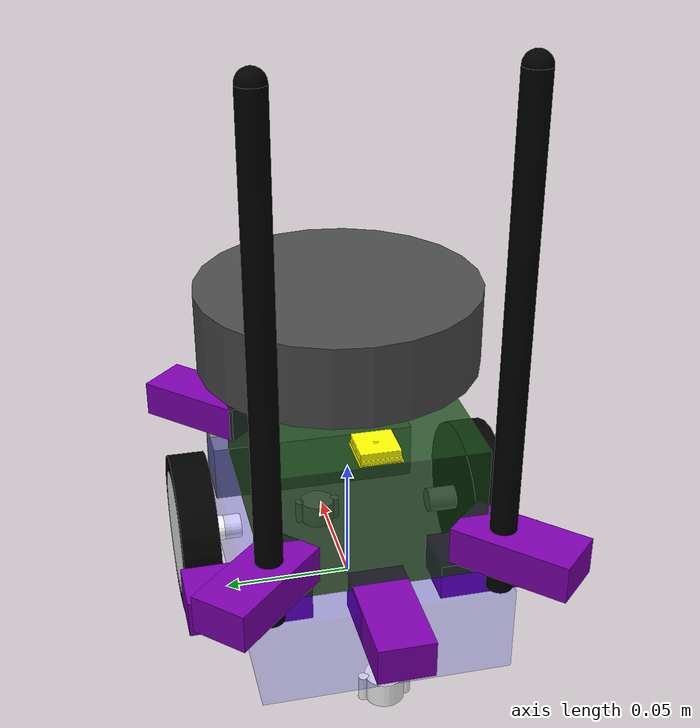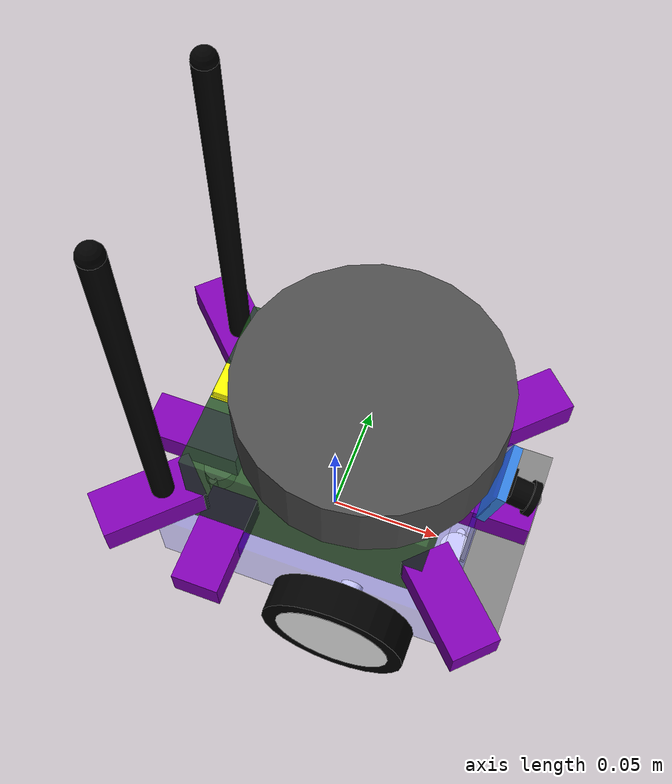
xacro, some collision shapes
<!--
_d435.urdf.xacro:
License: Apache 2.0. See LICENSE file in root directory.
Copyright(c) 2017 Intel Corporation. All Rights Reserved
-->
<?xml version="1.0"?>
<robot xmlns:xacro="http://www.ros.org/wiki/xacro" name="jetbot">

  <!-- Xacro arguments for depth camera use -->
  <xacro:arg name="realsense_enable" default="true" />
  <xacro:arg name="pointcloud_enable" default="true" />

  <!-- Xacro arguments for depth lidar use -->
  <xacro:arg name="lidar_enable" default="true" />
  <xacro:arg name="visualize_laser" default="true" />

  <!-- Xacro arguments for imu -->
  <xacro:arg name="imu_enable" default="true" />

  <!-- Xacro arguments for gps -->
  <xacro:arg name="gps_enable" default="true" />

  <!-- Xacro arguments for ultrasonic -->
  <xacro:arg name="ultrasonic_enable" default="true" />

  <!-- All Neccesary Header Files, Macros and Constants -->
  <xacro:include filename="$(find jetbot_diff_drive)/urdf/includes.xacro" />
  <!-- All Neccesary Header FIles, Macros and Constants -->

  <!-- CHASSIS -->
  <xacro:chassis />
  <!-- LEFT WHEEL -->
  <xacro:wheel_parts prefix="lt" reflect="1" />
  <!-- RIGHT WHEEL -->
  <xacro:wheel_parts prefix="rt" reflect="-1" />
  <!-- FRONT CASTER WHEEL -->
  <xacro:caster_wheel_parts prefix="front" reflect="1" />
  <!-- BACK CASTER WHEEL -->
  <xacro:caster_wheel_parts prefix="back" reflect="-1" />
  <!-- LEFT ANTENNA -->
  <xacro:antenna prefix="lt" reflect="1" />
  <!-- RIGHT ANTENNA -->
  <xacro:antenna prefix="rt" reflect="-1" />
  <!-- SENSORS -->
  <!-- MONOCULAR CAMERA -->
  <xacro:camera />
  <!-- BOARDS -->
  <xacro:pcb />

  <!-- REALSENSE CAMERA -->
  <xacro:if value="$(arg realsense_enable)">
    <xacro:sensor_d435 name="realsense_d435" topics_ns="realsense_d435" parent="base_link" publish_pointcloud="$(arg pointcloud_enable)" >
      <origin xyz="0.077 0 0" rpy="0 0 0" />
    </xacro:sensor_d435>
  </xacro:if>

  <!-- RPLIDAR LASER -->
  <xacro:if value="$(arg lidar_enable)" >
    <xacro:sensor_rplidar name="rplidar" topic_ns="rplidar" parent="pcb_boards" visualize_laser="$(arg visualize_laser)" >
      <origin xyz="0 0 0.058" rpy="0 0 0" />
    </xacro:sensor_rplidar >
  </xacro:if>

  <!-- IMU -->
  <xacro:if value="$(arg imu_enable)" >
    <xacro:sensor_imu name="bno055" topic_ns="bno_imu" parent="pcb_boards" >
      <origin xyz="0 0 0.0275" rpy="0 0 0" />
    </xacro:sensor_imu>
  </xacro:if>

  <!-- GPS -->
  <xacro:if value="$(arg gps_enable)" >
    <xacro:sensor_gps name="mtk3339" topic_ns="mtk_gps" parent="bno055_base" >
      <origin xyz="-0.044 0 0" rpy="0 0 0" />
    </xacro:sensor_gps>
  </xacro:if>

  <!-- Ultrasonic Sensors -->
  <xacro:if value="$(arg ultrasonic_enable)" >
    <xacro:sensor_sonar name="sonar_1" topic_ns="sonar_back_rt" prefix="back_rt" parent="base_link" >
      <origin xyz="-${base_len/3.5} -${base_width/2} ${base_height/2}" rpy="0 0 -${pi/2}" />
    </xacro:sensor_sonar>

    <xacro:sensor_sonar name="sonar_2" topic_ns="sonar_front_rt45" prefix="front_rt45" parent="base_link" >
      <origin xyz="${base_len/2} -${base_width/2} ${base_height+(base_z_offset)/2}" rpy="0 0 -${pi/4}" />
    </xacro:sensor_sonar>

    <xacro:sensor_sonar name="sonar_3" topic_ns="sonar_front" prefix="front" parent="camera_mount_over" >
      <origin xyz="0 0 0" rpy="0 0 0" />
    </xacro:sensor_sonar>

    <xacro:sensor_sonar name="sonar_4" topic_ns="sonar_front_lt45" prefix="front_lt45" parent="base_link" >
      <origin xyz="${base_len/2} ${base_width/2} ${base_height+(base_z_offset)/2}" rpy="0 0 ${pi/4}" />
    </xacro:sensor_sonar>

    <xacro:sensor_sonar name="sonar_5" topic_ns="sonar_back_lt" prefix="back_lt" parent="base_link" >
      <origin xyz="-${base_len/3.5} ${base_width/2} ${base_height/2}" rpy="0 0 ${pi/2}" />
    </xacro:sensor_sonar>

    <xacro:sensor_sonar name="sonar_6" topic_ns="sonar_back_lt45" prefix="back_lt45" parent="base_link" >
      <origin xyz="-${base_len/2} ${base_width/2} ${base_height+(base_z_offset)/2}" rpy="0 0 ${pi/2 + pi/4}" />
    </xacro:sensor_sonar>

    <xacro:sensor_sonar name="sonar_7" topic_ns="sonar_back" prefix="back" parent="base_link" >
      <origin xyz="-${base_len/2} 0 ${base_height/2}" rpy="0 0 ${pi}" />
    </xacro:sensor_sonar>

    <xacro:sensor_sonar name="sonar_8" topic_ns="sonar_back_rt45" prefix="back_rt45" parent="base_link" >
      <origin xyz="-${base_len/2} -${base_width/2} ${base_height+(base_z_offset)/2}" rpy="0 0 -${pi/2 + pi/4}" />
    </xacro:sensor_sonar>
  </xacro:if>

</robot>

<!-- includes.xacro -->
<robot xmlns:xacro="http://www.ros.org/wiki/xacro">

  <!-- Rviz Color Properties -->
  <xacro:include filename="$(find jetbot_diff_drive)/urdf/includes/materials/materials.xacro" />
  <!-- Rviz Color Properties -->

  <!-- Gazebo Properties -->
  <xacro:include filename="$(find jetbot_diff_drive)/urdf/includes/gazebo/jetbot.gazebo.xacro" />
  <!-- Gazebo Properties -->

  <!-- Transmission Macro -->
  <xacro:include filename="$(find jetbot_diff_drive)/urdf/includes/gazebo/transmission.xacro" />
  <!-- Transmission Macro -->

  <!-- Inertia Macros -->
  <xacro:include filename="$(find jetbot_diff_drive)/urdf/includes/gazebo/inertias.xacro" />
  <!-- Inertia Macros -->

  <!-- Chassis macro -->
  <xacro:include filename="$(find jetbot_diff_drive)/urdf/includes/parts/chassis.xacro" />
  <!-- Chassis macro -->

  <!-- Antenna Macro -->
  <xacro:include filename="$(find jetbot_diff_drive)/urdf/includes/parts/antenna.xacro" />
  <!-- Antenna Macro -->

  <!-- Wheel Macro -->
  <xacro:include filename="$(find jetbot_diff_drive)/urdf/includes/parts/wheels/wheel.xacro" />
  <!-- Wheel Macro -->

  <!-- Caster Wheel Macro -->
  <xacro:include filename="$(find jetbot_diff_drive)/urdf/includes/parts/wheels/caster.xacro" />
  <!-- Caster Wheel Macro -->

  <!-- Camera-->
  <xacro:include filename="$(find jetbot_diff_drive)/urdf/includes/parts/sensors/rgbcam/camera.xacro" />
  <!-- Camera-->

  <!-- PCB Boards -->
  <xacro:include filename="$(find jetbot_diff_drive)/urdf/includes/parts/boards.xacro" />
  <!-- PCB Boards -->

  <!-- Intel Realsense Macro -->
  <xacro:include filename="$(find jetbot_diff_drive)/urdf/includes/parts/sensors/realsense/_d435.urdf.xacro" />
  <!-- Intel Realsense Macro -->

  <!-- RPLidar -->
  <xacro:include filename="$(find jetbot_diff_drive)/urdf/includes/parts/sensors/laser/laser.urdf.xacro" />
  <!-- RPLidar -->

  <!-- IMU -->
  <xacro:include filename="$(find jetbot_diff_drive)/urdf/includes/parts/sensors/imu/bno055.urdf.xacro" />
  <!-- IMU -->

  <!-- GPS -->
  <xacro:include filename="$(find jetbot_diff_drive)/urdf/includes/parts/sensors/gps/mtk3339.urdf.xacro" />
  <!-- GPS -->

  <!-- Sonar -->
  <xacro:include filename="$(find jetbot_diff_drive)/urdf/includes/parts/sensors/sonar/hcsr04.urdf.xacro" />
  <!-- SOnar -->

</robot>

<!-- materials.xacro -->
<robot>

  <material name="purple">
    <color rgba="0.5 0 0.7 1"/>
  </material>
  <material name="yellow">
    <color rgba="1 1 0 1"/>
  </material>
  <material name="black">
    <color rgba="0 0 0 1"/>
  </material>
  <material name="white">
    <color rgba="1.0 1.0 1.0 1.0"/>
  </material>
  <material name="blue">
    <color rgba="0 0 1 0.2"/>
  </material>
  <material name="grey">
    <color rgba="0.66 0.66 0.66 1"/>
  </material>
  <material name="soft_blue">
    <color rgba="0.2157 0.5294 0.9216 1"/>
  </material>
  <material name="grey_alpha">
    <color rgba="0.3 0.3 0.3 0.4"/>
  </material>
  <material name="green">
    <color rgba="0.1 0.3 0.1 0.8"/>
  </material>
  <material name="dark">
    <color rgba="0.3 0.3 0.3 1.0"/>
  </material>

</robot>

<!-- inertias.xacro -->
<robot xmlns:xacro="http://www.ros.org/wiki/xacro">

  <!-- Inertia Equations -->
  <!-- https://bit.ly/2S0aK32 -->
  <!-- ixx ixy ixz -->
  <!-- ixy iyy iyz -->
  <!-- ixz iyz izz -->

  <!-- A simple inertial macro -->
  <xacro:macro name="inertia" params="mass">
    <inertial>
      <mass value="${mass}"/>
      <inertia ixx="0.04" ixy="0.0" ixz="0.0" iyy="0.04" iyz="0.0" izz="0.04"/>
    </inertial>
  </xacro:macro>
  <!-- A simple inertial macro -->

  <!-- cuboid inertia -->
  <xacro:macro name="cuboid_inertia" params="mass x y z">
    <inertial>
      <mass value="${mass}"/>
      <inertia  ixx="${mass*(y*y+z*z)/12}" ixy = "0" ixz = "0"
                iyy="${mass*(x*x+z*z)/12}" iyz = "0"
                izz="${mass*(x*x+y*y)/12}" />
    </inertial>
  </xacro:macro>
  <!-- cuboid inertia -->

  <!-- sphere inertia -->
  <xacro:macro name="sphere_inertia" params="mass r">
    <inertial>
      <mass value="${mass}"/>
      <inertia  ixx="${2*mass*r*r/5}" ixy = "0" ixz = "0"
                iyy="${2*mass*r*r/5}" iyz = "0"
                izz="${2*mass*r*r/5}" />
    </inertial>
  </xacro:macro>
  <!-- sphere inertia -->

  <!-- cylinder inertia -->
  <xacro:macro name="cylinder_inertia" params="mass r h">
    <inertial>
      <mass value="${mass}"/>
      <inertia  ixx="${mass*(3*r*r+h*h)/12}" ixy = "0" ixz = "0"
                iyy="${mass*(3*r*r+h*h)/12}" iyz = "0"
                izz="${mass*r*r/2}" />
    </inertial>
  </xacro:macro>
  <!-- cylinder inertia -->

</robot>

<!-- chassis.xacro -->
<robot xmlns:xacro="http://www.ros.org/wiki/xacro">

  <!-- Chassis constants -->
  <xacro:property name="base_len" value="0.134"/>
  <xacro:property name="base_width" value="0.095"/>
  <xacro:property name="base_height" value="0.035"/>
  <xacro:property name="base_z_offset" value="0.013"/>
  <xacro:property name="base_mass" value="0.045" />
  <!--xacro:property name="base_mass" value="0.6" /-->
  <!-- Chassis constants -->

  <!-- CHASSIS (body) -->
  <xacro:macro name="chassis" >

  <link name="odom" />
  <link name="base_footprint" />
  <link name="base_link">
    <visual>
      <origin xyz="0 0 ${base_z_offset}"/>
      <geometry>
        <box size="${base_len} ${base_width} ${base_height}"/>
      </geometry>
      <material name="blue"/>
    </visual>
    <collision>
      <origin xyz="0 0 ${base_z_offset}"/>
      <geometry>
        <box size="${base_len} ${base_width} ${base_height}"/>
      </geometry>
    </collision>
    <xacro:cuboid_inertia mass="${base_mass}" x="${base_len}" y="${base_width}" z="${base_height}" />
  </link>

  <!-- Joint to connect base_link with base_footprint -->
  <joint name="base_footprint_joint" type="fixed">
    <parent link="base_footprint"/>
    <child link="base_link" />
  </joint>

  <!-- Joint to connect base_footprint with odom -->
  <joint name="odom_joint" type="fixed">
    <parent link="odom"/>
    <child link="base_footprint" />
  </joint>

  </xacro:macro>

  <!-- CHASSIS (body) -->

</robot>

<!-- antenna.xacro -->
<robot xmlns:xacro="http://www.ros.org/wiki/xacro">

  <!-- Antenna constants -->
  <xacro:property name="antenna_len" value="0.19" />
  <xacro:property name="antenna_r" value="0.005" />
  <xacro:property name="antenna_x" value="-0.645" />
  <xacro:property name="antenna_body_mass" value="0.01" />
  <xacro:property name="antenna_top_mass" value="0.000007" />
  <!-- Antenna constants -->

  <!-- Inertia Macros -->
  <xacro:include filename="$(find jetbot_diff_drive)/urdf/includes/gazebo/inertias.xacro" />
  <!-- Inertia Macros -->

  <!-- Left and Right Antenna Macro -->
  <xacro:macro name="antenna" params="prefix reflect">
  <link name="${prefix}_antenna">
    <visual>
      <origin xyz="0 0 ${antenna_len/2}"/>
      <geometry>
        <cylinder length="${antenna_len}" radius="${antenna_r}"/>
      </geometry>
      <material name="black"/>
    </visual>
    <collision>
      <origin xyz="0 0 ${antenna_len/2}"/>
      <geometry>
        <cylinder length="${antenna_len}" radius="${antenna_r}"/>
      </geometry>
    </collision>
    <xacro:cylinder_inertia mass="${antenna_body_mass}" r="${antenna_r}" h="${antenna_len}" />
  </link>
  <joint name="base_${prefix}_antenna_joint" type="fixed">
    <parent link="base_link"/>
    <child link="${prefix}_antenna"/>
    <origin xyz="-${(base_len/2 - antenna_r)} ${reflect*(antenna_r + 0.0375)} 0.0305"/>
  </joint>

  <link name="${prefix}_antenna_top">
    <visual>
      <geometry>
        <sphere radius="${antenna_r}"/>
      </geometry>
      <material name="black"/>
    </visual>
    <collision>
      <geometry>
        <sphere radius="${antenna_r}"/>
      </geometry>
    </collision>
    <xacro:sphere_inertia mass="${antenna_top_mass}" r="${antenna_r}" />
  </link>
  <joint name="${prefix}_antenna_top_joint" type="fixed">
    <origin xyz="0 0 ${antenna_len}"/>
    <parent link="${prefix}_antenna"/>
    <child link="${prefix}_antenna_top"/>
  </joint>
  </xacro:macro>
  <!-- Left and Right Antenna Macro -->

</robot>

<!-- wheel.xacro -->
<robot xmlns:xacro="http://www.ros.org/wiki/xacro">

  <!-- Wheel constants -->
  <xacro:property name="shaft_len" value="0.015" />
  <xacro:property name="shaft_r" value="0.005" />
  <xacro:property name="shaft_xoffset" value="0.023" />
  <xacro:property name="shaft_yoffset" value="0.048" />
  <xacro:property name="wheelc_len" value="0.015" />
  <xacro:property name="wheelc_r" value = "0.026" />
  <xacro:property name="wheel_shaft_mass" value = "0.0028" />
  <xacro:property name="wheelc_mass" value = "0.0272" />
  <xacro:property name="wheel_mass" value = "0.0181" />

  <!-- Wheel constants -->

  <!-- Inertia Macro -->
  <xacro:include filename="$(find jetbot_diff_drive)/urdf/includes/gazebo/inertias.xacro" />
  <!-- Inertia Macro -->

  <!-- Wheel Macro-->
  <xacro:macro name="wheel_parts" params="prefix reflect">
  <link name="${prefix}_wheel_shaft">
    <visual>
      <origin xyz="0 0 0" rpy="${pi/2} 0 0"/>
      <geometry>
        <cylinder radius="${shaft_r}" length="${shaft_len}" />
      </geometry>
      <material name="white"/>
    </visual>
    <collision>
      <origin xyz="0 0 0" rpy="${pi/2} 0 0"/>
      <geometry>
        <cylinder radius="${shaft_r}" length="${shaft_len}" />
      </geometry>
    </collision>
    <xacro:cylinder_inertia mass="${wheel_shaft_mass}" r="${shaft_r}" h="${shaft_len}"/>
  </link>
  <joint name="base_${prefix}_wheel_shaft_joint" type="fixed">
    <axis rpy="0 0 0" xyz="0 0 0" />
    <parent link="base_link"/>
    <child link="${prefix}_wheel_shaft"/>
    <origin rpy="0 0 0" xyz="${shaft_xoffset} ${shaft_yoffset*reflect} 0.013" />
  </joint>

  <link name="${prefix}_wheelc">
    <visual>
      <origin rpy="${pi/2} 0 0"/>
      <geometry>
        <cylinder length="${wheelc_len}" radius="${wheelc_r}"/>
      </geometry>
      <material name="white"/>
    </visual>
    <collision>
      <origin rpy="${pi/2} 0 0"/>
      <geometry>
        <cylinder length="${wheelc_len}" radius="${wheelc_r}"/>
      </geometry>
    </collision>
    <xacro:inertia mass="0.6" />
    <!--xacro:cylinder_inertia mass="${wheelc_mass}" r="${wheelc_r}" h="${wheelc_len}" /-->
  </link>
  <joint name="${prefix}_shaft_wheelc_joint" type="fixed">
    <origin xyz="0 ${reflect*(wheelc_r-0.002)/2} 0"/>
    <parent link="${prefix}_wheel_shaft"/>
    <child link="${prefix}_wheelc"/>
  </joint>

  <link name="${prefix}_wheel">
    <visual>
    <origin rpy="${pi/2} 0 0" xyz="0 0 0" />
      <geometry>
        <cylinder length="${wheelc_len}" radius="${wheelc_r + 0.0065}"/>
      </geometry>
      <material name="black"/>
    </visual>
    <collision>
    <origin rpy="${pi/2} 0 0" xyz="0 0 0" />
      <geometry>
        <cylinder length="${wheelc_len}" radius="${wheelc_r + 0.0065}"/>
      </geometry>
    </collision>
    <xacro:inertia mass="0.6"/>
    <!--xacro:cylinder_inertia mass="${wheel_mass}" r="${wheelc_r + 0.0065}" h="${wheelc_len}" /-->
  </link>
  <joint name="${prefix}_wheel_joint" type="continuous">
    <axis xyz="0 1 0"/>
    <parent link="${prefix}_wheelc"/>
    <child link="${prefix}_wheel"/>
    <origin xyz ="0 ${-0.0001*reflect} 0"/>
  </joint>
  <xacro:tx prefix="${prefix}" suffix="wheel" />
  </xacro:macro>
  <!-- Wheel Macro-->

</robot>

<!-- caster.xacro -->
<robot xmlns:xacro="http://www.ros.org/wiki/xacro">

  <!-- Caster Ball constants -->
  <xacro:property name="caster_cyl_len" value="0.01" />
  <xacro:property name="caster_cyl_r" value="0.0075" />
  <xacro:property name="caster_xoffset" value="0.06" />
  <xacro:property name="caster_yoffset" value="0.008" />
  <xacro:property name="caster_zoffset" value="-0.0097" />
  <xacro:property name="caster_ball" value="0.005" />
  <xacro:property name="caster_minicyl_mass" value="0.0001" />
  <xacro:property name="caster_cyl_mass" value="0.001" />
  <xacro:property name="caster_ball_mass" value="0.02" />

  <!-- Caster Ball constants -->

  <!-- Inertia Macro -->
  <xacro:include filename="$(find jetbot_diff_drive)/urdf/includes/gazebo/inertias.xacro" />
  <!-- Inertia Macro -->

  <!-- Caster Wheel Left and Right Mini Cylinder Macros -->
  <xacro:macro name="caster_minicyl" params="prefix suffix reflect">
  <link name="${prefix}_caster_${suffix}_cyl">
    <visual>
      <geometry>
        <cylinder length="${caster_cyl_len}" radius="${caster_cyl_r/3.75}"/>
      </geometry>
      <material name="white"/>
    </visual>
    <collision>
      <geometry>
        <cylinder length="${caster_cyl_len}" radius="${caster_cyl_r/3.75}"/>
      </geometry>
    </collision>
    <xacro:cylinder_inertia mass="${caster_minicyl_mass}" r="${caster_cyl_r/3.75}" h="${caster_cyl_len}" />
  </link>
  <joint name="${prefix}_caster_${suffix}_cyl_joint" type="fixed">
    <origin xyz="0 ${reflect*caster_yoffset} 0"/>
    <parent link="${prefix}_caster_base"/>
    <child link="${prefix}_caster_${suffix}_cyl"/>
  </joint>
  </xacro:macro>
  <!-- Caster Wheel Left and Right Mini Cylinder Macros -->

  <!-- Left and Caster Wheel Macros, Including Mini Cylinders -->
  <xacro:macro name="caster_wheel_parts" params="prefix reflect">
  <link name="${prefix}_caster_base">
    <visual>
      <geometry>
        <cylinder length="${caster_cyl_len}" radius="${caster_cyl_r}"/>
      </geometry>
      <material name="white"/>
    </visual>
    <collision>
      <geometry>
        <cylinder length="${caster_cyl_len}" radius="${caster_cyl_r}"/>
      </geometry>
    </collision>
    <xacro:cylinder_inertia mass="${caster_cyl_mass}" r="${caster_cyl_r}" h="${caster_cyl_len}" />
  </link>
  <joint name="base_${prefix}_caster_joint" type="fixed">
    <origin xyz="${reflect*caster_xoffset} 0 ${caster_zoffset}"/>
    <parent link="base_link"/>
    <child link="${prefix}_caster_base"/>
  </joint>

  <xacro:caster_minicyl prefix="${prefix}" suffix="lt" reflect="1" />
  <xacro:caster_minicyl prefix="${prefix}" suffix="rt" reflect="-1" />

  <link name="${prefix}_caster">
    <visual>
      <geometry>
        <sphere radius="${caster_ball}" />
      </geometry>
      <material name="grey"/>
    </visual>
    <collision>
      <geometry>
        <sphere radius="${caster_ball}" />
      </geometry>
    </collision>
    <xacro:sphere_inertia mass="${caster_ball_mass}" r="${caster_ball}" />
  </link>
  <joint name="${prefix}_caster_joint" type="fixed">
    <parent link="${prefix}_caster_base"/>
    <child link="${prefix}_caster"/>
    <origin xyz="0 0 -0.004"/>
  </joint>
  <!--xacro:tx prefix="${prefix}" suffix="caster" /-->
  </xacro:macro>
  <!-- Left and Caster Wheel Macros, Including Mini Cylinders -->

</robot>

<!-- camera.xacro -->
<robot xmlns:xacro="http://www.ros.org/wiki/xacro">

<!-- Inertias Macros -->
<xacro:include filename="$(find jetbot_diff_drive)/urdf/includes/gazebo/inertias.xacro" />
<!-- Inertias Macros -->

<!-- CAMERA -->
 <xacro:macro name="camera" >
  <link name="camera_mount_base">
    <visual>
      <geometry>
        <box size="0.01 0.04 0.002"/>
      </geometry>
      <material name="blue"/>
    </visual>
    <collision>
      <geometry>
        <box size="0.01 0.04 0.002"/>
      </geometry>
    </collision>
    <xacro:cuboid_inertia mass="0.6" x="0.01" y="0.04" z="0.002" />
  </link>
  <joint name="camera_mount_base_joint" type="fixed">
    <parent link="base_link"/>
    <child link="camera_mount_base"/>
    <origin rpy="0 0 0" xyz="0.0615 0 0.0315"/>
  </joint>

  <link name="camera_mount_over">
    <visual>
      <origin rpy="0 1.57079632679 0"/>
      <geometry>
        <box size="0.03 0.04 0.002"/>
      </geometry>
      <material name="blue"/>
    </visual>
    <collision>
      <origin rpy="0 1.57079632679 0"/>
      <geometry>
        <box size="0.03 0.04 0.002"/>
      </geometry>
    </collision>
    <xacro:cuboid_inertia mass="0.6" x="0.03" y="0.04" z="0.002"/>
  </link>
  <joint name="camera_mount_over_joint" type="fixed">
    <parent link="camera_mount_base"/>
    <child link="camera_mount_over"/>
    <origin xyz="0.004 0 0.016"/>
  </joint>

  <link name="camera_mount_angled">
    <visual>
      <origin rpy="0 1.57079632679 0"/>
      <geometry>
        <box size="0.025 0.025 0.002"/>
      </geometry>
      <material name="blue"/>
    </visual>
    <collision>
      <origin rpy="0 1.57079632679 0"/>
      <geometry>
        <box size="0.025 0.025 0.002"/>
      </geometry>
    </collision>
    <xacro:cuboid_inertia mass="0.6" x="0.025" y="0.025" z="0.002" />
  </link>
  <joint name="camera_mount_angled_joint" type="fixed">
    <parent link="camera_mount_over"/>
    <child link="camera_mount_angled"/>
    <origin rpy="0 0.24 0" xyz="0.003 0 0.027"/>
  </joint>

  <link name="camera_screen_base">
    <visual>
      <origin rpy="0 1.57079632679 0"/>
      <geometry>
        <box size="0.025 0.025 0.004"/>
      </geometry>
      <material name="soft_blue"/>
    </visual>
    <collision>
      <origin rpy="0 1.57079632679 0"/>
      <geometry>
        <box size="0.025 0.025 0.004"/>
      </geometry>
    </collision>
    <xacro:cuboid_inertia mass="0.6" x="0.025" y="0.025" z="0.004" />
  </link>
  <joint name="camera_mount_screen_joint" type="fixed">
    <parent link="camera_mount_angled"/>
    <child link="camera_screen_base"/>
    <origin rpy="0 0 0" xyz="0.0025 0 0"/>
  </joint>

  <link name="camera_pcb_base">
    <visual>
      <origin rpy="0 1.57079632679 0"/>
      <geometry>
        <box size="0.013 0.013 0.004"/>
      </geometry>
      <material name="black"/>
    </visual>
    <collision>
      <origin rpy="0 1.57079632679 0"/>
      <geometry>
        <box size="0.013 0.013 0.004"/>
      </geometry>
    </collision>
    <xacro:cuboid_inertia mass="0.6" x="0.013" y="0.013" z="0.004" />
  </link>
  <joint name="camera_pcb_base_joint" type="fixed">
    <parent link="camera_screen_base"/>
    <child link="camera_pcb_base"/>
    <origin xyz="0.0025 0 0"/>
  </joint>

  <link name="camera_lens_body">
    <visual>
      <origin rpy="0 1.57079632679 0"/>
      <geometry>
        <cylinder length="0.01" radius="0.006"/>
      </geometry>
      <material name="black"/>
    </visual>
    <collision>
      <origin rpy="0 1.57079632679 0"/>
      <geometry>
        <cylinder length="0.01" radius="0.006"/>
      </geometry>
    </collision>
    <xacro:cylinder_inertia mass="0.6" r="0.006" h="0.01" />
  </link>
  <joint name="camera_lens_body_joint" type="fixed">
    <parent link="camera_pcb_base"/>
    <child link="camera_lens_body"/>
    <origin xyz="0.007 0 0"/>
  </joint>

  <link name="camera_lens_body_out">
    <visual>
      <origin rpy="0 1.57079632679 0"/>
      <geometry>
        <cylinder length="0.003" radius="0.0075"/>
      </geometry>
      <material name="black"/>
    </visual>
    <collision>
      <origin rpy="0 1.57079632679 0"/>
      <geometry>
        <cylinder length="0.003" radius="0.0075"/>
      </geometry>
    </collision>
    <xacro:cylinder_inertia mass="0.6" r="0.0075" h="0.003"/>
  </link>
 <joint name="camera_lens_body_out_joint" type="fixed">
    <parent link="camera_lens_body"/>
    <child link="camera_lens_body_out"/>
    <origin xyz="0.005 0 0"/>
  </joint>

  <link name="camera_lens">
    <visual>
      <origin rpy="0 1.57079632679 0"/>
      <geometry>
        <sphere radius="0.005" />
      </geometry>
      <material name="grey_alpha"/>
    </visual>
    <collision>
      <origin rpy="0 1.57079632679 0"/>
      <geometry>
        <sphere radius="0.005" />
      </geometry>
    </collision>
    <xacro:sphere_inertia mass="0.6" r="0.005" />
  </link>
 <joint name="camera_lens_joint" type="fixed">
    <parent link="camera_lens_body_out"/>
    <child link="camera_lens"/>
    <origin xyz="-0.001 0 0"/>
  </joint>
  </xacro:macro>
</robot>

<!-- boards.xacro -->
<robot xmlns:xacro="http://www.ros.org/wiki/xacro">

  <!-- Motor driver and PCB constants -->
  <xacro:property name="box_len" value="0.105" />
  <xacro:property name="box_width" value="0.08" />
  <xacro:property name="box_height" value="0.055" />
  <xacro:property name="box_mass" value="0.3645" />
  <!--xacro:property name="box_mass" value="0.6" /-->
  <!-- Motor driver and PCB constants -->

  <!-- Inertias Macros -->
  <xacro:include filename="$(find jetbot_diff_drive)/urdf/includes/gazebo/inertias.xacro" />
  <!-- Inertias Macros -->

  <!-- PCB, MOTOR DRIVER AND JETSON NANO -->
  <xacro:macro name="pcb">
  <link name="pcb_boards">
    <visual>
      <geometry>
        <box size="${box_len} ${box_width} ${box_height}"/>
      </geometry>
      <material name="green"/>
    </visual>
    <collision>
      <geometry>
        <box size="${box_len} ${box_width} ${box_height}"/>
      </geometry>
    </collision>
    <xacro:cuboid_inertia mass="${box_mass}" x="${box_len}" y="${box_width}" z="${box_height}" />
  </link>
  <joint name="base_nano_joint" type="fixed">
    <parent link="base_link"/>
    <child link="pcb_boards"/>
    <origin xyz="0 0 ${box_height}"/>
  </joint>
  </xacro:macro>
  <!-- PCB, MOTOR DRIVER AND JETSON NANO -->

</robot>

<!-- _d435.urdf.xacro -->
<robot name="sensor_d435" xmlns:xacro="http://ros.org/wiki/xacro">
  <!--File includes-->
  <xacro:include filename="$(find jetbot_diff_drive)/urdf/includes/gazebo/_d435.gazebo.xacro"/>

  <xacro:macro name="sensor_d435" params="name:=camera topics_ns:=camera parent *origin publish_pointcloud:=true">
    <xacro:property name="M_PI" value="3.1415926535897931" />

    <!-- The following values are approximate, and the camera node
     publishing TF values with actual calibrated camera extrinsic values -->
    <xacro:property name="d435_cam_depth_to_left_ir_offset" value="0.0"/>
    <xacro:property name="d435_cam_depth_to_right_ir_offset" value="-0.050"/>
    <xacro:property name="d435_cam_depth_to_color_offset" value="0.015"/>

    <!-- The following values model the aluminum peripherial case for the
    D435 camera, with the camera joint represented by the actual
    peripherial camera tripod mount -->
    <xacro:property name="d435_cam_width" value="0.090"/>
    <xacro:property name="d435_cam_height" value="0.025"/>
    <xacro:property name="d435_cam_depth" value="0.02505"/>
    <xacro:property name="d435_cam_mount_from_center_offset" value="0.0149"/>

    <!-- The following offset is relative the the physical D435 camera peripherial
    camera tripod mount -->
    <xacro:property name="d435_cam_depth_px" value="${d435_cam_mount_from_center_offset}"/>
    <xacro:property name="d435_cam_depth_py" value="0.0175"/>
    <xacro:property name="d435_cam_depth_pz" value="${d435_cam_height/2}"/>

    <material name="${name}_aluminum">
    <color rgba="0.5 0.5 0.5 1"/>
    </material>

    <!-- camera body, with origin at bottom screw mount -->
    <joint name="${name}_joint" type="fixed">
      <xacro:insert_block name="origin" />
      <parent link="${parent}"/>
      <child link="${name}_bottom_screw_frame" />
    </joint>
    <link name="${name}_bottom_screw_frame"/>

    <joint name="${name}_link_joint" type="fixed">
      <origin xyz="0 ${d435_cam_depth_py} ${d435_cam_depth_pz}" rpy="0 0 0"/>
      <parent link="${name}_bottom_screw_frame"/>
      <child link="${name}_link" />
    </joint>

    <link name="${name}_link">
      <visual>
      <origin xyz="${d435_cam_mount_from_center_offset} ${-d435_cam_depth_py} 0" rpy="${M_PI/2} 0 ${M_PI/2}"/>
        <geometry>
          <mesh filename="package://jetbot_diff_drive/meshes/realsense/d435.dae" />
        </geometry>
        <material name="${name}_aluminum"/>
      </visual>
      <collision>
        <origin xyz="0 ${-d435_cam_depth_py} 0" rpy="0 0 0"/>
        <geometry>
        <box size="${d435_cam_depth} ${d435_cam_width} ${d435_cam_height}"/>
        </geometry>
      </collision>
      <inertial>
        <!-- The following are not reliable values, and should not be used for modeling -->
        <mass value="0.564" />
        <origin xyz="0 0 0" />
        <inertia ixx="0.003881243" ixy="0.0" ixz="0.0" iyy="0.000498940" iyz="0.0" izz="0.003879257" />
      </inertial>
    </link>

    <!-- camera depth joints and links -->
    <joint name="${name}_depth_joint" type="fixed">
      <origin xyz="0 0 0" rpy="0 0 0"/>
      <parent link="${name}_link"/>
      <child link="${name}_depth_frame" />
    </joint>
    <link name="${name}_depth_frame"/>

    <joint name="${name}_depth_optical_joint" type="fixed">
      <origin xyz="0 0 0" rpy="${-M_PI/2} 0 ${-M_PI/2}" />
      <parent link="${name}_depth_frame" />
      <child link="${name}_depth_optical_frame" />
    </joint>
    <link name="${name}_depth_optical_frame"/>

    <!-- camera left IR joints and links -->
    <joint name="${name}_left_ir_joint" type="fixed">
      <origin xyz="0 ${d435_cam_depth_to_left_ir_offset} 0" rpy="0 0 0" />
      <parent link="${name}_depth_frame" />
      <child link="${name}_left_ir_frame" />
    </joint>
    <link name="${name}_left_ir_frame"/>

    <joint name="${name}_left_ir_optical_joint" type="fixed">
      <origin xyz="0 0 0" rpy="${-M_PI/2} 0 ${-M_PI/2}" />
      <parent link="${name}_left_ir_frame" />
      <child link="${name}_left_ir_optical_frame" />
    </joint>
    <link name="${name}_left_ir_optical_frame"/>

    <!-- camera right IR joints and links -->
    <joint name="${name}_right_ir_joint" type="fixed">
      <origin xyz="0 ${d435_cam_depth_to_right_ir_offset} 0" rpy="0 0 0" />
      <parent link="${name}_depth_frame" />
      <child link="${name}_right_ir_frame" />
    </joint>
    <link name="${name}_right_ir_frame"/>

    <joint name="${name}_right_ir_optical_joint" type="fixed">
      <origin xyz="0 0 0" rpy="${-M_PI/2} 0 ${-M_PI/2}" />
      <parent link="${name}_right_ir_frame" />
      <child link="${name}_right_ir_optical_frame" />
    </joint>
    <link name="${name}_right_ir_optical_frame"/>

    <!-- camera color joints and links -->
    <joint name="${name}_color_joint" type="fixed">
      <origin xyz="0 ${d435_cam_depth_to_color_offset} 0" rpy="0 0 0" />
      <parent link="${name}_depth_frame" />
      <child link="${name}_color_frame" />
    </joint>
    <link name="${name}_color_frame"/>

    <joint name="${name}_color_optical_joint" type="fixed">
      <origin xyz="0 0 0" rpy="${-M_PI/2} 0 ${-M_PI/2}" />
      <parent link="${name}_color_frame" />
      <child link="${name}_color_optical_frame" />
    </joint>
    <link name="${name}_color_optical_frame"/>

    <!-- Realsense Gazebo Plugin -->
    <xacro:gazebo_d435 camera_name="${name}" reference_link="${name}_link" topics_ns="${topics_ns}" depth_optical_frame="${name}_depth_optical_frame" color_optical_frame="${name}_color_optical_frame" infrared1_optical_frame="${name}_left_ir_optical_frame" infrared2_optical_frame="${name}_right_ir_optical_frame" publish_pointcloud="${publish_pointcloud}"/>

  </xacro:macro>
</robot>

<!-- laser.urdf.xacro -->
<robot xmlns:xacro="http://www.ros.org/wiki/xacro">

  <xacro:include filename="$(find jetbot_diff_drive)/urdf/includes/gazebo/laser.gazebo.xacro"/>

  <!-- LASER (RPLidar) -->
  <xacro:macro name="sensor_rplidar" params="name topic_ns:=rplidar parent *origin visualize_laser:=true">

    <joint name="scan_joint" type="fixed">
      <parent link="${parent}"/>
      <child link="${name}_base_scan"/>
      <xacro:insert_block name="origin" />
    </joint>

    <link name="${name}_base_scan">
      <visual>
        <origin xyz="0 0 0.0" rpy="0 0 0"/>
        <geometry>
          <mesh filename="package://jetbot_diff_drive/meshes/laser/lds.stl" scale="0.001 0.001 0.001"/>
        </geometry>
        <material name="dark"/>
      </visual>

      <collision>
        <origin xyz="0.015 0 -0.0065" rpy="0 0 0"/>
        <geometry>
          <cylinder length="0.0315" radius="0.055"/>
        </geometry>
      </collision>

      <inertial>
        <mass value="0.114" />
        <origin xyz="0 0 0" />
        <inertia ixx="0.001" ixy="0.0" ixz="0.0"
                 iyy="0.001" iyz="0.0"
                 izz="0.001" />
      </inertial>
    </link>

    <!-- RPLidar Plugin -->
    <xacro:gazebo_rplidar lidar_name="${name}" reference_link="${name}_base_scan" topic_ns="${topic_ns}" visualize_laser="${visualize_laser}" />
  </xacro:macro>
</robot>

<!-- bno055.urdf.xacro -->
<robot xmlns:xacro="http://www.ros.org/wiki/xacro">

  <!-- BNO055 Constants -->
  <xacro:property name="bno_depth" value="0.00254" />
  <xacro:property name="bno_width" value="0.0254" />
  <xacro:property name="bno_height" value="0.02032" />
  <xacro:property name="bno_mass" value="0.003" />
  <!-- BNO055 constants -->

  <!-- Inertias Macros -->
  <xacro:include filename="$(find jetbot_diff_drive)/urdf/includes/gazebo/inertias.xacro" />
  <!-- Inertias Macros -->

  <xacro:include filename="$(find jetbot_diff_drive)/urdf/includes/gazebo/imu.gazebo.xacro" />

  <!-- IMU BNO055 -->
  <xacro:macro name="sensor_imu" params="name topic_ns:=bno055 parent *origin">

    <joint name="{name}_joint" type="fixed">
      <parent link="${parent}"/>
      <child link="${name}_base"/>
      <xacro:insert_block name="origin" />
    </joint>

    <link name="${name}_base">
      <visual>
        <origin xyz="-${bno_width/2} ${bno_height/2} 0" rpy="${pi/2} 0 0"/>
        <geometry>
          <mesh filename="package://jetbot_diff_drive/meshes/imu/bno055.stl" scale="0.001 0.001 0.001"/>
        </geometry>
        <material name="yellow"/>
      </visual>
      <collision>
        <origin xyz="0 0 ${bno_depth/2}" rpy="0 0 0"/>
        <geometry>
          <box size="${bno_width} ${bno_height} ${bno_depth}"/>
        </geometry>
      </collision>
      <xacro:cuboid_inertia mass="${bno_mass}" x="${bno_width}" y="${bno_height}" z="${bno_depth}" />
    </link>
    <!-- IMU Plugin -->
    <xacro:gazebo_imu imu_name="${name}" topic_ns="${topic_ns}" />
  </xacro:macro>
</robot>

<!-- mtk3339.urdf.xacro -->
<robot xmlns:xacro="http://www.ros.org/wiki/xacro">

  <!-- MTK3339 Constants -->
  <xacro:property name="mtk_depth" value="0.0044" />
  <xacro:property name="mtk_width" value="0.016" />
  <xacro:property name="mtk_height" value="0.016" />
  <xacro:property name="mtk_mass" value="0.0085" />
  <!-- MTK3339 constants -->

  <!-- Inertias Macros -->
  <xacro:include filename="$(find jetbot_diff_drive)/urdf/includes/gazebo/inertias.xacro" />
  <!-- Inertias Macros -->

  <xacro:include filename="$(find jetbot_diff_drive)/urdf/includes/gazebo/gps.gazebo.xacro" />

  <!-- GPS MTK3339 -->
  <xacro:macro name="sensor_gps" params="name:=mtk3339 topic_ns:=gps parent *origin">

    <joint name="${name}_joint" type="fixed">
      <parent link="${parent}"/>
      <child link="${name}_link"/>
      <xacro:insert_block name="origin" />
    </joint>

    <link name="${name}_link">
      <visual>
        <origin xyz="-${mtk_width/2} ${mtk_height/2} 0" rpy="${pi/2} 0 0"/>
        <geometry>
          <mesh filename="package://jetbot_diff_drive/meshes/gps/mtk3339.stl" scale="0.001 0.001 0.001"/>
        </geometry>
        <material name="yellow"/>
      </visual>
      <collision>
        <origin xyz="0 0 ${mtk_depth/2}" rpy="0 0 0"/>
        <geometry>
          <box size="${mtk_width} ${mtk_height} ${mtk_depth}"/>
        </geometry>
      </collision>
      <xacro:cuboid_inertia mass="${mtk_mass}" x="${mtk_width}" y="${mtk_height}" z="${mtk_depth}" />
    </link>
    <!-- GPS Plugin -->
    <xacro:gazebo_gps gps_name="${name}_gps" reference_link="${name}_link" topic_ns="${topic_ns}" />
    <!-- GPS Plugin -->
  </xacro:macro>
</robot>

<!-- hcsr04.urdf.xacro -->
<robot xmlns:xacro="http://www.ros.org/wiki/xacro">

  <!-- MTK3339 Constants -->
  <xacro:property name="sonar_depth" value="0.01454" />
  <xacro:property name="sonar_width" value="0.0457" />
  <xacro:property name="sonar_height" value="0.0213" />
  <xacro:property name="sonar_mass" value="0.020" />
  <!-- MTK3339 constants -->

  <!-- Inertias Macros -->
  <xacro:include filename="$(find jetbot_diff_drive)/urdf/includes/gazebo/inertias.xacro" />
  <!-- Inertias Macros -->

  <xacro:include filename="$(find jetbot_diff_drive)/urdf/includes/gazebo/sonar.gazebo.xacro" />

  <xacro:macro name="sensor_sonar" params="name:=hcsr04 topic_ns:=sonar_1 prefix parent *origin">

  <!-- Sonar HCSR04 -->
    <joint name="${prefix}_${name}_joint" type="fixed">
      <parent link="${parent}"/>
      <child link="${prefix}_${name}_link"/>
      <xacro:insert_block name="origin" />
    </joint>

    <link name="${prefix}_${name}_link">
      <visual>
        <origin xyz="0 -${sonar_width/2} -${sonar_height/2}" rpy="${pi/2} 0 ${pi/2}"/>
        <geometry>
          <mesh filename="package://jetbot_diff_drive/meshes/sonar/hcsr04.stl" scale="0.001 0.001 0.001"/>
        </geometry>
        <material name="purple"/>
      </visual>
      <collision>
        <origin xyz="0 0 ${sonar_depth/2}" rpy="0 0 0"/>
        <geometry>
          <box size="${sonar_width} ${sonar_height} ${sonar_depth}"/>
        </geometry>
      </collision>
      <xacro:cuboid_inertia mass="${sonar_mass}" x="${sonar_width}" y="${sonar_height}" z="${sonar_depth}" />
    </link>
    <!-- Sonar Plugin -->
    <xacro:gazebo_sonar name="${prefix}_${name}"
                        reference_link="${prefix}_${name}_link"
                        topic_ns="${name}"
                        update_rate="10"
                        min_range="0.3"
                        max_range="1.5"
                        field_of_view="50"
                        ray_count="2" />
    <!-- Sonar Plugin -->

  </xacro:macro>

</robot>
